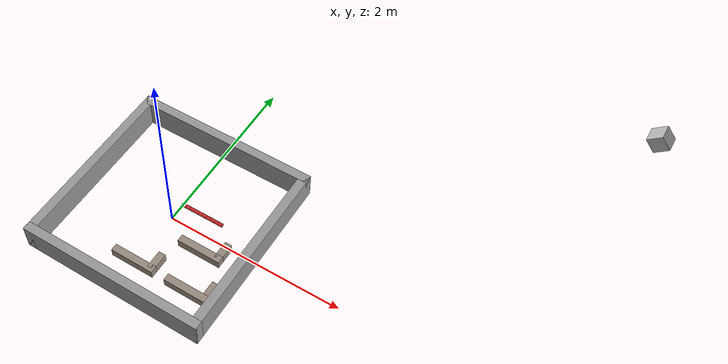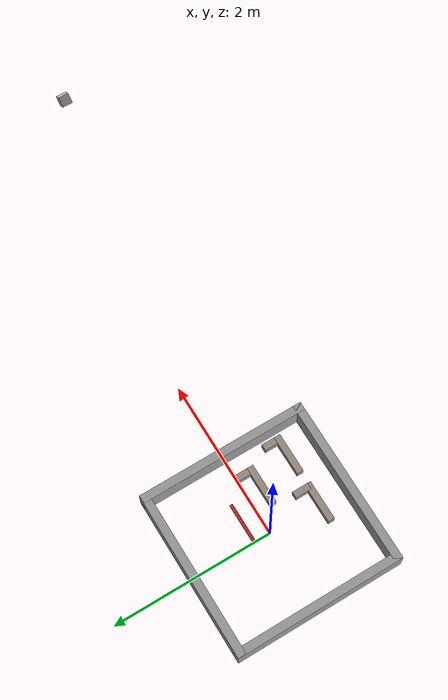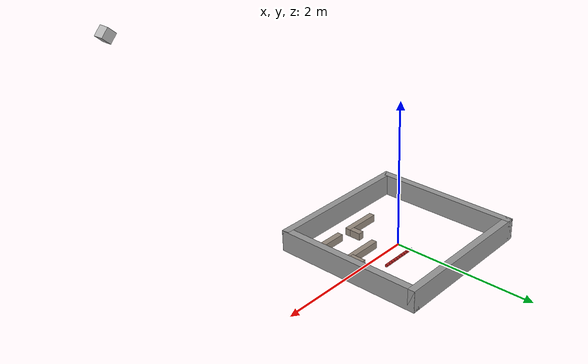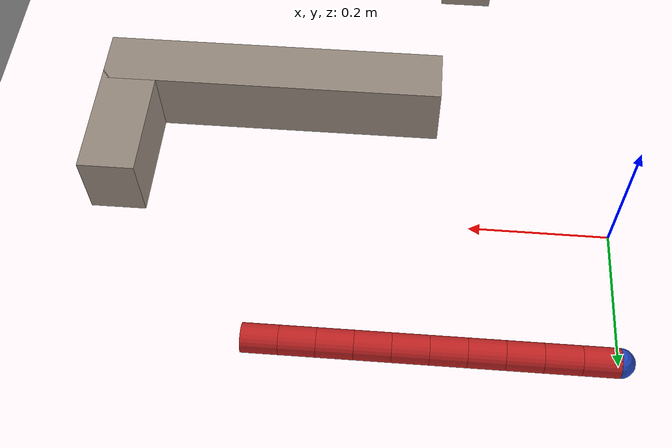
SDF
<sdf version="1.6">
 <world name="default">
  <scene><grid>false</grid><origin_visual>false</origin_visual></scene>
  <physics name="ode" type="ode">
   <ode><constraints><contact_max_correcting_vel>0.1</contact_max_correcting_vel></constraints></ode>
   <max_step_size>0.01</max_step_size>
   <real_time_update_rate>100</real_time_update_rate>
  </physics>
  <plugin name="stepping_plugin" filename="libstepping_plugin.so"/>
  <plugin name="gazebo_ros_tf_plugin" filename="libgazebo_ros_tf_plugin.so"/>
  <plugin name="collision_map_plugin" filename="libcollision_map_plugin.so"/>
  <plugin name="position_3d_plugin" filename="libposition_3d_plugin.so"/>
  <include><uri>model://sun</uri></include>
  <include><pose>0 0.2 0.01 0 0 0</pose><uri>model://dragging_rope</uri></include>
  <include><uri>model://arena_2</uri><name>arena</name></include>
  <include><uri>model://corner1</uri><pose>0.0 -0.65 0 0 0 0</pose><name>small_box7</name></include>
  <include><uri>model://corner1</uri><pose>0.65 -0.65 0 0 0 0</pose><name>small_box8</name></include>
  <include><uri>model://corner1</uri><pose>0.5 -0.2 0 0 0 0</pose><name>small_box9</name></include>
  <include><uri>model://debugging_camera</uri></include>
 </world>
</sdf>

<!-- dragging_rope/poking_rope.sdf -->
<sdf version="1.6">
    <model name="dragging_rope">
        <pose frame="">0 0 0.01 0 0 0</pose>

        <link name="rope_link_1">
        <pose frame="">0.025 0 0 3.14159 -1.57079 3.14159</pose>
        <inertial>
            <pose frame="">0 0 0 0 0 0</pose>
            <mass>0.05</mass>
            <inertia>
                <ixx>1.5416666666666668e-05</ixx>
                <ixy>0</ixy>
                <ixz>0</ixz>
                <iyy>1.5416666666666668e-05</iyy>
                <iyz>0</iyz>
                <izz>1.0e-05</izz>
            </inertia>
        </inertial>
        <collision name="link_1_collision">
            <pose frame="">0 0 0 0 0 0</pose>
            <geometry>
                <box>
                    <size>0.04 0.04 0.045000000000000005</size>
                </box>
            </geometry>
            <surface>
                <friction>
                    <ode>
                        <mu>0.10</mu>
                        <mu2>0.10</mu2>
                    </ode>
                </friction>
                <contact>
                    <ode>
                        <kp>1e15</kp>
                        <kd>1e13</kd>
                    </ode>
                </contact>
            </surface>
        </collision>

        <visual name="link_1_visual">
            <cast_shadows>0</cast_shadows>
            <pose frame="">0 0 0 0 0 0</pose>
            <geometry>
                <cylinder>
                    <length>0.05</length>
                    <radius>0.02</radius>
                </cylinder>
            </geometry>
            <material>
                <script>
                    <name>Gazebo/Red</name>
                    <uri>file://media/materials/scripts/gazebo.material</uri>
                </script>
            </material>
        </visual>
        <self_collide>1</self_collide>
        </link>

        <link name="rope_link_2">
        <pose frame="">0.07500000000000001 0 0 3.14159 -1.57079 3.14159</pose>
        <inertial>
            <pose frame="">0 0 0 0 0 0</pose>
            <mass>0.05</mass>
            <inertia>
                <ixx>1.5416666666666668e-05</ixx>
                <ixy>0</ixy>
                <ixz>0</ixz>
                <iyy>1.5416666666666668e-05</iyy>
                <iyz>0</iyz>
                <izz>1.0e-05</izz>
            </inertia>
        </inertial>
        <collision name="link_2_collision">
            <pose frame="">0 0 0 0 0 0</pose>
            <geometry>
                <box>
                    <size>0.04 0.04 0.045000000000000005</size>
                </box>
            </geometry>
            <surface>
                <friction>
                    <ode>
                        <mu>0.10</mu>
                        <mu2>0.10</mu2>
                    </ode>
                </friction>
                <contact>
                    <ode>
                        <kp>1e15</kp>
                        <kd>1e13</kd>
                    </ode>
                </contact>
            </surface>
        </collision>

        <visual name="link_2_visual">
            <cast_shadows>0</cast_shadows>
            <pose frame="">0 0 0 0 0 0</pose>
            <geometry>
                <cylinder>
                    <length>0.05</length>
                    <radius>0.02</radius>
                </cylinder>
            </geometry>
            <material>
                <script>
                    <name>Gazebo/Red</name>
                    <uri>file://media/materials/scripts/gazebo.material</uri>
                </script>
            </material>
        </visual>
        <self_collide>1</self_collide>
        </link>

        <link name="rope_link_3">
        <pose frame="">0.125 0 0 3.14159 -1.57079 3.14159</pose>
        <inertial>
            <pose frame="">0 0 0 0 0 0</pose>
            <mass>0.05</mass>
            <inertia>
                <ixx>1.5416666666666668e-05</ixx>
                <ixy>0</ixy>
                <ixz>0</ixz>
                <iyy>1.5416666666666668e-05</iyy>
                <iyz>0</iyz>
                <izz>1.0e-05</izz>
            </inertia>
        </inertial>
        <collision name="link_3_collision">
            <pose frame="">0 0 0 0 0 0</pose>
            <geometry>
                <box>
                    <size>0.04 0.04 0.045000000000000005</size>
                </box>
            </geometry>
            <surface>
                <friction>
                    <ode>
                        <mu>0.10</mu>
                        <mu2>0.10</mu2>
                    </ode>
                </friction>
                <contact>
                    <ode>
                        <kp>1e15</kp>
                        <kd>1e13</kd>
                    </ode>
                </contact>
            </surface>
        </collision>

        <visual name="link_3_visual">
            <cast_shadows>0</cast_shadows>
            <pose frame="">0 0 0 0 0 0</pose>
            <geometry>
                <cylinder>
                    <length>0.05</length>
                    <radius>0.02</radius>
                </cylinder>
            </geometry>
            <material>
                <script>
                    <name>Gazebo/Red</name>
                    <uri>file://media/materials/scripts/gazebo.material</uri>
                </script>
            </material>
        </visual>
        <self_collide>1</self_collide>
        </link>

        <link name="rope_link_4">
        <pose frame="">0.17500000000000002 0 0 3.14159 -1.57079 3.14159</pose>
        <inertial>
            <pose frame="">0 0 0 0 0 0</pose>
            <mass>0.05</mass>
            <inertia>
                <ixx>1.5416666666666668e-05</ixx>
                <ixy>0</ixy>
                <ixz>0</ixz>
                <iyy>1.5416666666666668e-05</iyy>
                <iyz>0</iyz>
                <izz>1.0e-05</izz>
            </inertia>
        </inertial>
        <collision name="link_4_collision">
            <pose frame="">0 0 0 0 0 0</pose>
            <geometry>
                <box>
                    <size>0.04 0.04 0.045000000000000005</size>
                </box>
            </geometry>
            <surface>
                <friction>
                    <ode>
                        <mu>0.10</mu>
                        <mu2>0.10</mu2>
                    </ode>
                </friction>
                <contact>
                    <ode>
                        <kp>1e15</kp>
                        <kd>1e13</kd>
                    </ode>
                </contact>
            </surface>
        </collision>

        <visual name="link_4_visual">
            <cast_shadows>0</cast_shadows>
            <pose frame="">0 0 0 0 0 0</pose>
            <geometry>
                <cylinder>
                    <length>0.05</length>
                    <radius>0.02</radius>
                </cylinder>
            </geometry>
            <material>
                <script>
                    <name>Gazebo/Red</name>
                    <uri>file://media/materials/scripts/gazebo.material</uri>
                </script>
            </material>
        </visual>
        <self_collide>1</self_collide>
        </link>

        <link name="rope_link_5">
        <pose frame="">0.225 0 0 3.14159 -1.57079 3.14159</pose>
        <inertial>
            <pose frame="">0 0 0 0 0 0</pose>
            <mass>0.05</mass>
            <inertia>
                <ixx>1.5416666666666668e-05</ixx>
                <ixy>0</ixy>
                <ixz>0</ixz>
                <iyy>1.5416666666666668e-05</iyy>
                <iyz>0</iyz>
                <izz>1.0e-05</izz>
            </inertia>
        </inertial>
        <collision name="link_5_collision">
            <pose frame="">0 0 0 0 0 0</pose>
            <geometry>
                <box>
                    <size>0.04 0.04 0.045000000000000005</size>
                </box>
            </geometry>
            <surface>
                <friction>
                    <ode>
                        <mu>0.10</mu>
                        <mu2>0.10</mu2>
                    </ode>
                </friction>
                <contact>
                    <ode>
                        <kp>1e15</kp>
                        <kd>1e13</kd>
                    </ode>
                </contact>
            </surface>
        </collision>

        <visual name="link_5_visual">
            <cast_shadows>0</cast_shadows>
            <pose frame="">0 0 0 0 0 0</pose>
            <geometry>
                <cylinder>
                    <length>0.05</length>
                    <radius>0.02</radius>
                </cylinder>
            </geometry>
            <material>
                <script>
                    <name>Gazebo/Red</name>
                    <uri>file://media/materials/scripts/gazebo.material</uri>
                </script>
            </material>
        </visual>
        <self_collide>1</self_collide>
        </link>

        <link name="rope_link_6">
        <pose frame="">0.275 0 0 3.14159 -1.57079 3.14159</pose>
        <inertial>
            <pose frame="">0 0 0 0 0 0</pose>
            <mass>0.05</mass>
            <inertia>
                <ixx>1.5416666666666668e-05</ixx>
                <ixy>0</ixy>
                <ixz>0</ixz>
                <iyy>1.5416666666666668e-05</iyy>
                <iyz>0</iyz>
                <izz>1.0e-05</izz>
            </inertia>
        </inertial>
        <collision name="link_6_collision">
            <pose frame="">0 0 0 0 0 0</pose>
            <geometry>
                <box>
                    <size>0.04 0.04 0.045000000000000005</size>
                </box>
            </geometry>
            <surface>
                <friction>
                    <ode>
                        <mu>0.10</mu>
                        <mu2>0.10</mu2>
                    </ode>
                </friction>
                <contact>
                    <ode>
                        <kp>1e15</kp>
                        <kd>1e13</kd>
                    </ode>
                </contact>
            </surface>
        </collision>

        <visual name="link_6_visual">
            <cast_shadows>0</cast_shadows>
            <pose frame="">0 0 0 0 0 0</pose>
            <geometry>
                <cylinder>
                    <length>0.05</length>
                    <radius>0.02</radius>
                </cylinder>
            </geometry>
            <material>
                <script>
                    <name>Gazebo/Red</name>
                    <uri>file://media/materials/scripts/gazebo.material</uri>
                </script>
            </material>
        </visual>
        <self_collide>1</self_collide>
        </link>

        <link name="rope_link_7">
        <pose frame="">0.32500000000000007 0 0 3.14159 -1.57079 3.14159</pose>
        <inertial>
            <pose frame="">0 0 0 0 0 0</pose>
            <mass>0.05</mass>
            <inertia>
                <ixx>1.5416666666666668e-05</ixx>
                <ixy>0</ixy>
                <ixz>0</ixz>
                <iyy>1.5416666666666668e-05</iyy>
                <iyz>0</iyz>
                <izz>1.0e-05</izz>
            </inertia>
        </inertial>
        <collision name="link_7_collision">
            <pose frame="">0 0 0 0 0 0</pose>
            <geometry>
                <box>
                    <size>0.04 0.04 0.045000000000000005</size>
                </box>
            </geometry>
            <surface>
                <friction>
                    <ode>
                        <mu>0.10</mu>
                        <mu2>0.10</mu2>
                    </ode>
                </friction>
                <contact>
                    <ode>
                        <kp>1e15</kp>
                        <kd>1e13</kd>
                    </ode>
                </contact>
            </surface>
        </collision>

        <visual name="link_7_visual">
            <cast_shadows>0</cast_shadows>
            <pose frame="">0 0 0 0 0 0</pose>
            <geometry>
                <cylinder>
                    <length>0.05</length>
                    <radius>0.02</radius>
                </cylinder>
            </geometry>
            <material>
                <script>
                    <name>Gazebo/Red</name>
                    <uri>file://media/materials/scripts/gazebo.material</uri>
                </script>
            </material>
        </visual>
        <self_collide>1</self_collide>
        </link>

        <link name="rope_link_8">
        <pose frame="">0.37500000000000006 0 0 3.14159 -1.57079 3.14159</pose>
        <inertial>
            <pose frame="">0 0 0 0 0 0</pose>
            <mass>0.05</mass>
            <inertia>
                <ixx>1.5416666666666668e-05</ixx>
                <ixy>0</ixy>
                <ixz>0</ixz>
                <iyy>1.5416666666666668e-05</iyy>
                <iyz>0</iyz>
                <izz>1.0e-05</izz>
            </inertia>
        </inertial>
        <collision name="link_8_collision">
            <pose frame="">0 0 0 0 0 0</pose>
            <geometry>
                <box>
                    <size>0.04 0.04 0.045000000000000005</size>
                </box>
            </geometry>
            <surface>
                <friction>
                    <ode>
                        <mu>0.10</mu>
                        <mu2>0.10</mu2>
                    </ode>
                </friction>
                <contact>
                    <ode>
                        <kp>1e15</kp>
                        <kd>1e13</kd>
                    </ode>
                </contact>
            </surface>
        </collision>

        <visual name="link_8_visual">
            <cast_shadows>0</cast_shadows>
            <pose frame="">0 0 0 0 0 0</pose>
            <geometry>
                <cylinder>
                    <length>0.05</length>
                    <radius>0.02</radius>
                </cylinder>
            </geometry>
            <material>
                <script>
                    <name>Gazebo/Red</name>
                    <uri>file://media/materials/scripts/gazebo.material</uri>
                </script>
            </material>
        </visual>
        <self_collide>1</self_collide>
        </link>

        <link name="rope_link_9">
        <pose frame="">0.42500000000000004 0 0 3.14159 -1.57079 3.14159</pose>
        <inertial>
            <pose frame="">0 0 0 0 0 0</pose>
            <mass>0.05</mass>
            <inertia>
                <ixx>1.5416666666666668e-05</ixx>
                <ixy>0</ixy>
                <ixz>0</ixz>
                <iyy>1.5416666666666668e-05</iyy>
                <iyz>0</iyz>
                <izz>1.0e-05</izz>
            </inertia>
        </inertial>
        <collision name="link_9_collision">
            <pose frame="">0 0 0 0 0 0</pose>
            <geometry>
                <box>
                    <size>0.04 0.04 0.045000000000000005</size>
                </box>
            </geometry>
            <surface>
                <friction>
                    <ode>
                        <mu>0.10</mu>
                        <mu2>0.10</mu2>
                    </ode>
                </friction>
                <contact>
                    <ode>
                        <kp>1e15</kp>
                        <kd>1e13</kd>
                    </ode>
                </contact>
            </surface>
        </collision>

        <visual name="link_9_visual">
            <cast_shadows>0</cast_shadows>
            <pose frame="">0 0 0 0 0 0</pose>
            <geometry>
                <cylinder>
                    <length>0.05</length>
                    <radius>0.02</radius>
                </cylinder>
            </geometry>
            <material>
                <script>
                    <name>Gazebo/Red</name>
                    <uri>file://media/materials/scripts/gazebo.material</uri>
                </script>
            </material>
        </visual>
        <self_collide>1</self_collide>
        </link>

        <link name="rope_link_10">
        <pose frame="">0.47500000000000003 0 0 3.14159 -1.57079 3.14159</pose>
        <inertial>
            <pose frame="">0 0 0 0 0 0</pose>
            <mass>0.05</mass>
            <inertia>
                <ixx>1.5416666666666668e-05</ixx>
                <ixy>0</ixy>
                <ixz>0</ixz>
                <iyy>1.5416666666666668e-05</iyy>
                <iyz>0</iyz>
                <izz>1.0e-05</izz>
            </inertia>
        </inertial>
        <collision name="link_10_collision">
            <pose frame="">0 0 0 0 0 0</pose>
            <geometry>
                <box>
                    <size>0.04 0.04 0.045000000000000005</size>
                </box>
            </geometry>
            <surface>
                <friction>
                    <ode>
                        <mu>0.10</mu>
                        <mu2>0.10</mu2>
                    </ode>
                </friction>
                <contact>
                    <ode>
                        <kp>1e15</kp>
                        <kd>1e13</kd>
                    </ode>
                </contact>
            </surface>
        </collision>

        <visual name="link_10_visual">
            <cast_shadows>0</cast_shadows>
            <pose frame="">0 0 0 0 0 0</pose>
            <geometry>
                <cylinder>
                    <length>0.05</length>
                    <radius>0.02</radius>
                </cylinder>
            </geometry>
            <material>
                <script>
                    <name>Gazebo/Red</name>
                    <uri>file://media/materials/scripts/gazebo.material</uri>
                </script>
            </material>
        </visual>
        <self_collide>1</self_collide>
        </link>

        <joint name="joint_1" type="revolute">
            <parent>rope_link_2</parent>
            <child>rope_link_1</child>
            <pose>0 0 -0.025 0 0 0</pose>
            <axis>
                <xyz>0 0 1</xyz>
                <limit>
                    <lower>-1.0</lower>
                    <upper>1.0</upper>
                    <effort>10</effort>
                    <velocity>5</velocity>
                </limit>
                <dynamics>
                    <damping>0.0</damping>
                    <friction>0</friction>
                </dynamics>
                <use_parent_model_frame>1</use_parent_model_frame>
            </axis>
            <physics>
                <ode>
                    <cfm>0.0001</cfm>
                    <implicit_spring_damper>1</implicit_spring_damper>
                </ode>
            </physics>
        </joint>

        <joint name="joint_2" type="revolute">
            <parent>rope_link_3</parent>
            <child>rope_link_2</child>
            <pose>0 0 -0.025 0 0 0</pose>
            <axis>
                <xyz>0 0 1</xyz>
                <limit>
                    <lower>-1.0</lower>
                    <upper>1.0</upper>
                    <effort>10</effort>
                    <velocity>5</velocity>
                </limit>
                <dynamics>
                    <damping>0.0</damping>
                    <friction>0</friction>
                </dynamics>
                <use_parent_model_frame>1</use_parent_model_frame>
            </axis>
            <physics>
                <ode>
                    <cfm>0.0001</cfm>
                    <implicit_spring_damper>1</implicit_spring_damper>
                </ode>
            </physics>
        </joint>

        <joint name="joint_3" type="revolute">
            <parent>rope_link_4</parent>
            <child>rope_link_3</child>
            <pose>0 0 -0.025 0 0 0</pose>
            <axis>
                <xyz>0 0 1</xyz>
                <limit>
                    <lower>-1.0</lower>
                    <upper>1.0</upper>
                    <effort>10</effort>
                    <velocity>5</velocity>
                </limit>
                <dynamics>
                    <damping>0.0</damping>
                    <friction>0</friction>
                </dynamics>
                <use_parent_model_frame>1</use_parent_model_frame>
            </axis>
            <physics>
                <ode>
                    <cfm>0.0001</cfm>
                    <implicit_spring_damper>1</implicit_spring_damper>
                </ode>
            </physics>
        </joint>

        <joint name="joint_4" type="revolute">
            <parent>rope_link_5</parent>
            <child>rope_link_4</child>
            <pose>0 0 -0.025 0 0 0</pose>
            <axis>
                <xyz>0 0 1</xyz>
                <limit>
                    <lower>-1.0</lower>
                    <upper>1.0</upper>
                    <effort>10</effort>
                    <velocity>5</velocity>
                </limit>
                <dynamics>
                    <damping>0.0</damping>
                    <friction>0</friction>
                </dynamics>
                <use_parent_model_frame>1</use_parent_model_frame>
            </axis>
            <physics>
                <ode>
                    <cfm>0.0001</cfm>
                    <implicit_spring_damper>1</implicit_spring_damper>
                </ode>
            </physics>
        </joint>

        <joint name="joint_5" type="revolute">
            <parent>rope_link_6</parent>
            <child>rope_link_5</child>
            <pose>0 0 -0.025 0 0 0</pose>
            <axis>
                <xyz>0 0 1</xyz>
                <limit>
                    <lower>-1.0</lower>
                    <upper>1.0</upper>
                    <effort>10</effort>
                    <velocity>5</velocity>
                </limit>
                <dynamics>
                    <damping>0.0</damping>
                    <friction>0</friction>
                </dynamics>
                <use_parent_model_frame>1</use_parent_model_frame>
            </axis>
            <physics>
                <ode>
                    <cfm>0.0001</cfm>
                    <implicit_spring_damper>1</implicit_spring_damper>
                </ode>
            </physics>
        </joint>

        <joint name="joint_6" type="revolute">
            <parent>rope_link_7</parent>
            <child>rope_link_6</child>
            <pose>0 0 -0.025 0 0 0</pose>
            <axis>
                <xyz>0 0 1</xyz>
                <limit>
                    <lower>-1.0</lower>
                    <upper>1.0</upper>
                    <effort>10</effort>
                    <velocity>5</velocity>
                </limit>
                <dynamics>
                    <damping>0.0</damping>
                    <friction>0</friction>
                </dynamics>
                <use_parent_model_frame>1</use_parent_model_frame>
            </axis>
            <physics>
                <ode>
                    <cfm>0.0001</cfm>
                    <implicit_spring_damper>1</implicit_spring_damper>
                </ode>
            </physics>
        </joint>

        <joint name="joint_7" type="revolute">
            <parent>rope_link_8</parent>
            <child>rope_link_7</child>
            <pose>0 0 -0.025 0 0 0</pose>
            <axis>
                <xyz>0 0 1</xyz>
                <limit>
                    <lower>-1.0</lower>
                    <upper>1.0</upper>
                    <effort>10</effort>
                    <velocity>5</velocity>
                </limit>
                <dynamics>
                    <damping>0.0</damping>
                    <friction>0</friction>
                </dynamics>
                <use_parent_model_frame>1</use_parent_model_frame>
            </axis>
            <physics>
                <ode>
                    <cfm>0.0001</cfm>
                    <implicit_spring_damper>1</implicit_spring_damper>
                </ode>
            </physics>
        </joint>

        <joint name="joint_8" type="revolute">
            <parent>rope_link_9</parent>
            <child>rope_link_8</child>
            <pose>0 0 -0.025 0 0 0</pose>
            <axis>
                <xyz>0 0 1</xyz>
                <limit>
                    <lower>-1.0</lower>
                    <upper>1.0</upper>
                    <effort>10</effort>
                    <velocity>5</velocity>
                </limit>
                <dynamics>
                    <damping>0.0</damping>
                    <friction>0</friction>
                </dynamics>
                <use_parent_model_frame>1</use_parent_model_frame>
            </axis>
            <physics>
                <ode>
                    <cfm>0.0001</cfm>
                    <implicit_spring_damper>1</implicit_spring_damper>
                </ode>
            </physics>
        </joint>

        <joint name="joint_9" type="revolute">
            <parent>rope_link_10</parent>
            <child>rope_link_9</child>
            <pose>0 0 -0.025 0 0 0</pose>
            <axis>
                <xyz>0 0 1</xyz>
                <limit>
                    <lower>-1.0</lower>
                    <upper>1.0</upper>
                    <effort>10</effort>
                    <velocity>5</velocity>
                </limit>
                <dynamics>
                    <damping>0.0</damping>
                    <friction>0</friction>
                </dynamics>
                <use_parent_model_frame>1</use_parent_model_frame>
            </axis>
            <physics>
                <ode>
                    <cfm>0.0001</cfm>
                    <implicit_spring_damper>1</implicit_spring_damper>
                </ode>
            </physics>
        </joint>

        <link name='head'>
        <pose frame=''>0 0 0 0 0 0 </pose>
        <inertial>
            <pose frame=''>0 0 0 0 0 0</pose>
            <mass>0.1</mass>
            <inertia>
                <ixx>0.0001</ixx>
                <ixy>0</ixy>
                <ixz>0</ixz>
                <iyy>0.0001</iyy>
                <iyz>0</iyz>
                <izz>0.001</izz>
            </inertia>
        </inertial>
        <collision name='head_collision'>
            <pose frame=''>0 0 0 0 0 0</pose>
            <geometry>
                <sphere>
                    <radius>0.02 </radius>
                </sphere>
            </geometry>
            <surface>
                <contact>
                    <ode>
                        <kp>1e15</kp>
                        <kd>1e13</kd>
                    </ode>
                </contact>
                <friction>
                    <ode>
                        <mu>0.10</mu>
                        <mu2>0.10</mu2>
                    </ode>
                </friction>
            </surface>
        </collision>
        <visual name='head_visual'>
            <cast_shadows>0</cast_shadows>
            <pose frame=''>0 0 0 0 0 0</pose>
            <geometry>
                <sphere>
                    <radius>0.02</radius>
                </sphere>
            </geometry>
            <material>
                <script>
                    <name>Gazebo/Blue</name>
                    <uri>file://media/materials/scripts/gazebo.material</uri>
                </script>
            </material>
        </visual>
        <self_collide>1</self_collide>
        </link>
        <joint name="head_joint" type="revolute">
            <child>head</child>
            <parent>rope_link_1</parent>
            <pose>0 0 0 0 0 0</pose>
            <axis>
                <xyz>0 0 1</xyz>
                <dynamics>
                    <damping>0.0</damping>
                    <friction>0.0</friction>
                </dynamics>
            </axis>
            <physics>
                <ode>
                    <cfm>0.0005</cfm>
                    <implicit_spring_damper>1</implicit_spring_damper>
                </ode>
            </physics>
        </joint>
        <plugin name='rope_plugin' filename='librope_plugin.so'>
            <num_links>10</num_links>
            <overstretching_factor>1.3</overstretching_factor>
        </plugin>
    </model>
</sdf>

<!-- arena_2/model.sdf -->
<sdf version="1.5">
<model name="arena_2m">
    <static>true</static>
    <link name="north_wall">
      <pose>0 1 0.15 0 0 0</pose>
      <visual name="visual">
        <cast_shadows>false</cast_shadows>
        <geometry>
          <box>
            <size>2.1 0.1 .3</size>
          </box>
        </geometry>
        <material>
          <script>
            <name>Gazebo/Grey</name>
            <uri>file://media/materials/scripts/gazebo.material</uri>
          </script>
        </material>
      </visual>
      <collision name="collision">
        <geometry>
          <box>
            <size>2.1 0.1 0.3</size>
          </box>
        </geometry>
      </collision>
    </link>
    <link name="south_wall">
      <pose>0 -1 0.15 0 0 0</pose>
      <visual name="visual">
        <cast_shadows>false</cast_shadows>
        <geometry>
          <box>
            <size>2.1 0.1 0.3</size>
          </box>
        </geometry>
        <material>
          <script>
            <name>Gazebo/Grey</name>
            <uri>file://media/materials/scripts/gazebo.material</uri>
          </script>
        </material>
      </visual>
      <collision name="collision">
        <geometry>
          <box>
            <size>2.1 0.1 0.3</size>
          </box>
        </geometry>
      </collision>
    </link>
    <link name="east_wall">
      <pose>1 0 0.15 0 0 0</pose>
      <visual name="visual">
        <cast_shadows>false</cast_shadows>
        <geometry>
          <box>
            <size>0.1 2.1 0.3</size>
          </box>
        </geometry>
        <material>
          <script>
            <name>Gazebo/Grey</name>
            <uri>file://media/materials/scripts/gazebo.material</uri>
          </script>
        </material>
      </visual>
      <collision name="collision">
        <geometry>
          <box>
            <size>0.1 2.1 0.3</size>
          </box>
        </geometry>
      </collision>
    </link>
    <link name="west_wall">
      <pose>-1 0 0.15 0 0 0</pose>
      <visual name="visual">
        <cast_shadows>false</cast_shadows>
        <geometry>
          <box>
            <size>0.1 2.1 0.3</size>
          </box>
        </geometry>
        <material>
          <script>
            <name>Gazebo/Grey</name>
            <uri>file://media/materials/scripts/gazebo.material</uri>
          </script>
        </material>
      </visual>
      <collision name="collision">
        <geometry>
          <box>
            <size>0.1 2.1 0.3</size>
          </box>
        </geometry>
      </collision>
    </link>
  </model>
</sdf>

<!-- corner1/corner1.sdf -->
<sdf version="1.6">
    <model name="corner1">
        <allow_auto_disable>true</allow_auto_disable>
        <link name="link_1">
            <inertial>
                <pose>0 0.0 0.05 0 0 0</pose>
                <inertia>
                    <ixx>0.104</ixx>
                    <iyy>0.104</iyy>
                    <izz>0.104</izz>
                </inertia>
                <mass>10</mass>
            </inertial>
            <pose>0 0 0.05 0 0 0 0</pose>
            <visual name="visual1">
                <pose>0 0 0 0 0 0</pose>
                <geometry>
                    <box>
                        <size>0.5 0.08 0.1</size>
                    </box>
                </geometry>
                <material>
                    <ambient>0.6 0.55 0.5 1.0</ambient>
                    <diffuse>0.6 0.55 0.5 1.0</diffuse>
                </material>
            </visual>
            <visual name="visual2">
                <pose>0.21 0.10 0 0 0 1.5707</pose>
                <geometry>
                    <box>
                        <size>0.2 0.08 0.1</size>
                    </box>
                </geometry>
                <material>
                    <ambient>0.6 0.55 0.5 1.0</ambient>
                    <diffuse>0.6 0.55 0.5 1.0</diffuse>
                </material>
            </visual>
            <collision name="collision1">
                <geometry>
                    <box>
                        <size>0.5 0.08 0.1</size>
                    </box>
                </geometry>
                <surface>
                    <friction>
                        <ode>
                            <mu>0.2</mu>
                            <mu2>0.2</mu2>
                        </ode>
                    </friction>
                    <contact>
                        <ode>
                            <kp>1e10</kp>
                            <kd>1e10</kd>
                        </ode>
                    </contact>
                </surface>
            </collision>
            <collision name="collision2">
                <pose>0.21 0.1 0 0 0 1.5707</pose>
                <geometry>
                    <box>
                        <size>0.2 0.08 0.1</size>
                    </box>
                </geometry>
                <surface>
                    <friction>
                        <ode>
                            <mu>0.2</mu>
                            <mu2>0.2</mu2>
                        </ode>
                    </friction>
                    <contact>
                        <ode>
                            <kp>1e10</kp>
                            <kd>1e10</kd>
                        </ode>
                    </contact>
                </surface>
            </collision>
        </link>
    </model>
</sdf>

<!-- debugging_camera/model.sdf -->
<sdf version="1.5">
	<model name='debugging_camera'>
		<static>true</static>
		<pose>3.8 0 3.8 0 0.75 3.14</pose>
		<link name='link'>
			<visual name='visual'>
				<geometry>
					<box>
						<size>0.1 0.1 0.1</size>
					</box>
				</geometry>
			</visual>
			<sensor type="camera" name="camera1">
				<update_rate>30.0</update_rate>
				<camera name="head">
					<horizontal_fov>1.3962634</horizontal_fov>
					<image>
					<width>800</width>
					<height>800</height>
					<format>R8G8B8</format>
					</image>
					<clip>
					<near>0.02</near>
					<far>300</far>
					</clip>
					<noise>
					<type>gaussian</type>
					<!-- Noise is sampled independently per pixel on each frame.
						That pixel's noise value is added to each of its color
						channels, which at that point lie in the range [0,1]. -->
					<mean>0.0</mean>
					<stddev>0.007</stddev>
					</noise>
				</camera>
				<plugin name="camera_controller" filename="libgazebo_ros_camera.so">
					<alwaysOn>true</alwaysOn>
					<updateRate>0.0</updateRate>
					<cameraName>debugging/camera</cameraName>
					<imageTopicName>image_raw</imageTopicName>
					<cameraInfoTopicName>camera_info</cameraInfoTopicName>
					<frameName>camera_link</frameName>
					<hackBaseline>0.07</hackBaseline>
					<distortionK1>0.0</distortionK1>
					<distortionK2>0.0</distortionK2>
					<distortionK3>0.0</distortionK3>
					<distortionT1>0.0</distortionT1>
					<distortionT2>0.0</distortionT2>
				</plugin>
			</sensor>
		</link>
	</model>
</sdf>
